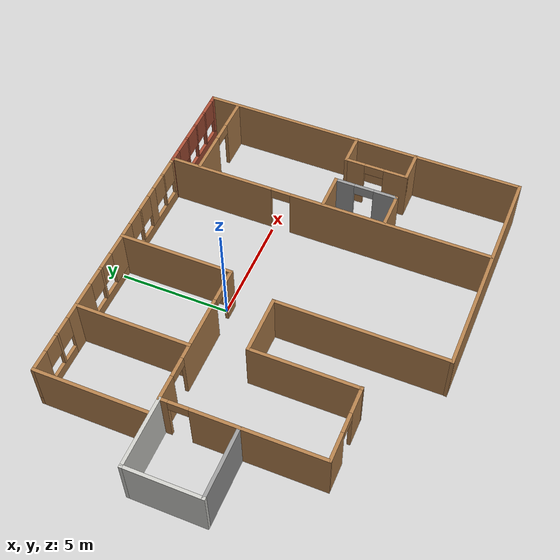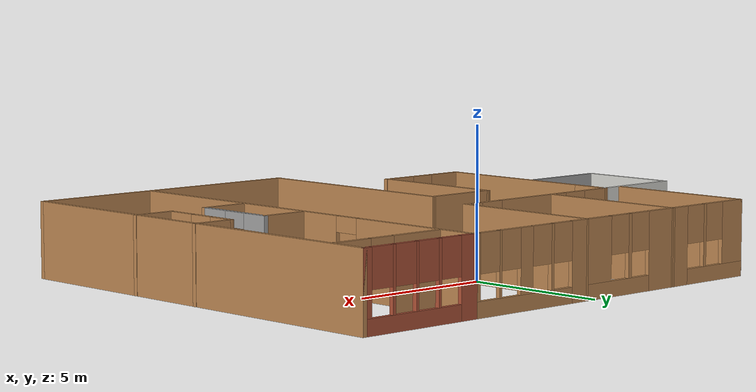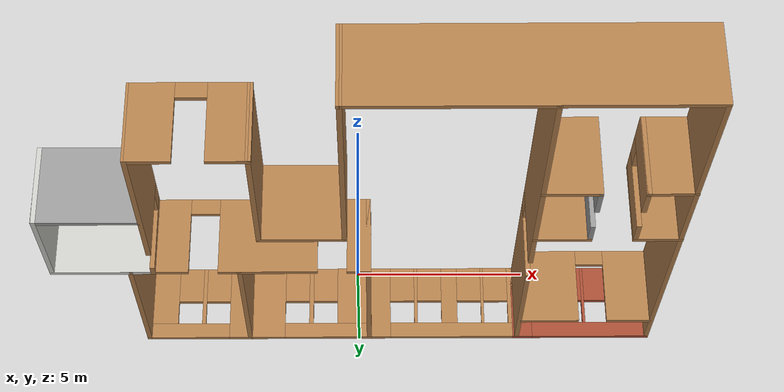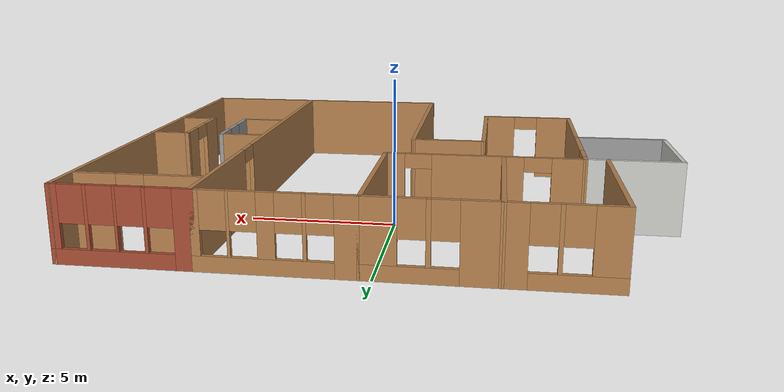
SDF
<?xml version='1.0'?>
<sdf version='1.6'>
  <model name='Building'>
    <pose frame=''>0.090066 -2.53341 0 0 -0 0</pose>
    <link name='Wall_10'>
      <collision name='Wall_10_Collision'>
        <geometry>
          <box>
            <size>4.92224 0.15 2.5</size>
          </box>
        </geometry>
        <pose frame=''>0 0 1.25 0 -0 0</pose>
      </collision>
      <visual name='Wall_10_Visual'>
        <pose frame=''>0 0 1.25 0 -0 0</pose>
        <geometry>
          <box>
            <size>4.92224 0.15 2.5</size>
          </box>
        </geometry>
        <material>
          <script>
            <uri>file://media/materials/scripts/gazebo.material</uri>
            <name>Gazebo/Wood</name>
          </script>
          <ambient>1 1 1 1</ambient>
        </material>
        <meta>
          <layer>0</layer>
        </meta>
      </visual>
      <pose frame=''>-2.9894 -2.23398 0 0 -0 1.57138</pose>
    </link>
    <link name='Wall_11'>
      <collision name='Wall_11_Collision'>
        <geometry>
          <box>
            <size>2.65308 0.15 2.5</size>
          </box>
        </geometry>
        <pose frame=''>0 0 1.25 0 -0 0</pose>
      </collision>
      <visual name='Wall_11_Visual'>
        <pose frame=''>0 0 1.25 0 -0 0</pose>
        <geometry>
          <box>
            <size>2.65308 0.15 2.5</size>
          </box>
        </geometry>
        <material>
          <script>
            <uri>file://media/materials/scripts/gazebo.material</uri>
            <name>Gazebo/Wood</name>
          </script>
          <ambient>1 1 1 1</ambient>
        </material>
        <meta>
          <layer>0</layer>
        </meta>
      </visual>
      <pose frame=''>-1.72405 0.152131 0 0 -0 0</pose>
    </link>
    <link name='Wall_12'>
      <collision name='Wall_12_Collision'>
        <geometry>
          <box>
            <size>7.78322 0.15 2.5</size>
          </box>
        </geometry>
        <pose frame=''>0 0 1.25 0 -0 0</pose>
      </collision>
      <visual name='Wall_12_Visual'>
        <pose frame=''>0 0 1.25 0 -0 0</pose>
        <geometry>
          <box>
            <size>7.78322 0.15 2.5</size>
          </box>
        </geometry>
        <material>
          <script>
            <uri>file://media/materials/scripts/gazebo.material</uri>
            <name>Gazebo/Wood</name>
          </script>
          <ambient>1 1 1 1</ambient>
        </material>
        <meta>
          <layer>0</layer>
        </meta>
      </visual>
      <pose frame=''>-0.4649 -3.66447 0 0 0 -1.57279</pose>
    </link>
    <link name='Wall_14'>
      <pose frame=''>5.14628 -0.015615 0 0 -0 1.5708</pose>
      <visual name='Wall_14_Visual_0'>
        <pose frame=''>-2.87766 0 1.25 0 -0 0</pose>
        <geometry>
          <box>
            <size>9.24468 0.15 2.5</size>
          </box>
        </geometry>
        <material>
          <script>
            <uri>file://media/materials/scripts/gazebo.material</uri>
            <name>Gazebo/Wood</name>
          </script>
          <ambient>1 1 1 1</ambient>
        </material>
        <meta>
          <layer>0</layer>
        </meta>
      </visual>
      <collision name='Wall_14_Collision_0'>
        <geometry>
          <box>
            <size>9.24468 0.15 2.5</size>
          </box>
        </geometry>
        <pose frame=''>-2.87766 0 1.25 0 -0 0</pose>
      </collision>
      <visual name='Wall_14_Visual_1'>
        <pose frame=''>5.07234 0 1.25 0 -0 0</pose>
        <geometry>
          <box>
            <size>4.85532 0.15 2.5</size>
          </box>
        </geometry>
        <material>
          <script>
            <uri>file://media/materials/scripts/gazebo.material</uri>
            <name>Gazebo/Wood</name>
          </script>
          <ambient>1 1 1 1</ambient>
        </material>
        <meta>
          <layer>0</layer>
        </meta>
      </visual>
      <collision name='Wall_14_Collision_1'>
        <geometry>
          <box>
            <size>4.85532 0.15 2.5</size>
          </box>
        </geometry>
        <pose frame=''>5.07234 0 1.25 0 -0 0</pose>
      </collision>
      <visual name='Wall_14_Visual_2'>
        <pose frame=''>2.19468 0 2.25 0 -0 0</pose>
        <geometry>
          <box>
            <size>0.9 0.15 0.5</size>
          </box>
        </geometry>
        <material>
          <script>
            <uri>file://media/materials/scripts/gazebo.material</uri>
            <name>Gazebo/Wood</name>
          </script>
          <ambient>1 1 1 1</ambient>
        </material>
        <meta>
          <layer>0</layer>
        </meta>
      </visual>
      <collision name='Wall_14_Collision_2'>
        <geometry>
          <box>
            <size>0.9 0.15 0.5</size>
          </box>
        </geometry>
        <pose frame=''>2.19468 0 2.25 0 -0 0</pose>
      </collision>
    </link>
    <link name='Wall_17'>
      <pose frame=''>-6.34701 -1.12558 0 0 -0 1.57337</pose>
      <visual name='Wall_17_Visual_0'>
        <pose frame=''>-0.66617 0 1.25 0 -0 0</pose>
        <geometry>
          <box>
            <size>5.80671 0.15 2.5</size>
          </box>
        </geometry>
        <material>
          <script>
            <uri>file://media/materials/scripts/gazebo.material</uri>
            <name>Gazebo/Wood</name>
          </script>
          <ambient>1 1 1 1</ambient>
        </material>
        <meta>
          <layer>0</layer>
        </meta>
      </visual>
      <collision name='Wall_17_Collision_0'>
        <geometry>
          <box>
            <size>5.80671 0.15 2.5</size>
          </box>
        </geometry>
        <pose frame=''>-0.66617 0 1.25 0 -0 0</pose>
      </collision>
      <visual name='Wall_17_Visual_1'>
        <pose frame=''>3.35335 0 1.25 0 -0 0</pose>
        <geometry>
          <box>
            <size>0.43234 0.15 2.5</size>
          </box>
        </geometry>
        <material>
          <script>
            <uri>file://media/materials/scripts/gazebo.material</uri>
            <name>Gazebo/Wood</name>
          </script>
          <ambient>1 1 1 1</ambient>
        </material>
        <meta>
          <layer>0</layer>
        </meta>
      </visual>
      <collision name='Wall_17_Collision_1'>
        <geometry>
          <box>
            <size>0.43234 0.15 2.5</size>
          </box>
        </geometry>
        <pose frame=''>3.35335 0 1.25 0 -0 0</pose>
      </collision>
      <visual name='Wall_17_Visual_2'>
        <pose frame=''>2.68718 0 2.25 0 -0 0</pose>
        <geometry>
          <box>
            <size>0.9 0.15 0.5</size>
          </box>
        </geometry>
        <material>
          <script>
            <uri>file://media/materials/scripts/gazebo.material</uri>
            <name>Gazebo/Wood</name>
          </script>
          <ambient>1 1 1 1</ambient>
        </material>
        <meta>
          <layer>0</layer>
        </meta>
      </visual>
      <collision name='Wall_17_Collision_2'>
        <geometry>
          <box>
            <size>0.9 0.15 0.5</size>
          </box>
        </geometry>
        <pose frame=''>2.68718 0 2.25 0 -0 0</pose>
      </collision>
    </link>
    <link name='Wall_18'>
      <pose frame=''>-3.056 2.36893 0 0 -0 0</pose>
      <visual name='Wall_18_Visual_0'>
        <pose frame=''>-2.79787 0 1.25 0 -0 0</pose>
        <geometry>
          <box>
            <size>1.15426 0.15 2.5</size>
          </box>
        </geometry>
        <material>
          <script>
            <uri>file://media/materials/scripts/gazebo.material</uri>
            <name>Gazebo/Wood</name>
          </script>
          <ambient>1 1 1 1</ambient>
        </material>
        <meta>
          <layer>0</layer>
        </meta>
      </visual>
      <collision name='Wall_18_Collision_0'>
        <geometry>
          <box>
            <size>1.15426 0.15 2.5</size>
          </box>
        </geometry>
        <pose frame=''>-2.79787 0 1.25 0 -0 0</pose>
      </collision>
      <visual name='Wall_18_Visual_1'>
        <pose frame=''>0.206367 0 1.25 0 -0 0</pose>
        <geometry>
          <box>
            <size>3.05423 0.15 2.5</size>
          </box>
        </geometry>
        <material>
          <script>
            <uri>file://media/materials/scripts/gazebo.material</uri>
            <name>Gazebo/Wood</name>
          </script>
          <ambient>1 1 1 1</ambient>
        </material>
        <meta>
          <layer>0</layer>
        </meta>
      </visual>
      <collision name='Wall_18_Collision_1'>
        <geometry>
          <box>
            <size>3.05423 0.15 2.5</size>
          </box>
        </geometry>
        <pose frame=''>0.206367 0 1.25 0 -0 0</pose>
      </collision>
      <visual name='Wall_18_Visual_2'>
        <pose frame=''>3.00424 0 1.25 0 -0 0</pose>
        <geometry>
          <box>
            <size>0.741521 0.15 2.5</size>
          </box>
        </geometry>
        <material>
          <script>
            <uri>file://media/materials/scripts/gazebo.material</uri>
            <name>Gazebo/Wood</name>
          </script>
          <ambient>1 1 1 1</ambient>
        </material>
        <meta>
          <layer>0</layer>
        </meta>
      </visual>
      <collision name='Wall_18_Collision_2'>
        <geometry>
          <box>
            <size>0.741521 0.15 2.5</size>
          </box>
        </geometry>
        <pose frame=''>3.00424 0 1.25 0 -0 0</pose>
      </collision>
      <visual name='Wall_18_Visual_3'>
        <pose frame=''>-1.77075 0 2.25 0 -0 0</pose>
        <geometry>
          <box>
            <size>0.9 0.15 0.5</size>
          </box>
        </geometry>
        <material>
          <script>
            <uri>file://media/materials/scripts/gazebo.material</uri>
            <name>Gazebo/Wood</name>
          </script>
          <ambient>1 1 1 1</ambient>
        </material>
        <meta>
          <layer>0</layer>
        </meta>
      </visual>
      <collision name='Wall_18_Collision_3'>
        <geometry>
          <box>
            <size>0.9 0.15 0.5</size>
          </box>
        </geometry>
        <pose frame=''>-1.77075 0 2.25 0 -0 0</pose>
      </collision>
      <visual name='Wall_18_Visual_4'>
        <pose frame=''>2.18348 0 2.25 0 -0 0</pose>
        <geometry>
          <box>
            <size>0.9 0.15 0.5</size>
          </box>
        </geometry>
        <material>
          <script>
            <uri>file://media/materials/scripts/gazebo.material</uri>
            <name>Gazebo/Wood</name>
          </script>
          <ambient>1 1 1 1</ambient>
        </material>
        <meta>
          <layer>0</layer>
        </meta>
      </visual>
      <collision name='Wall_18_Collision_4'>
        <geometry>
          <box>
            <size>0.9 0.15 0.5</size>
          </box>
        </geometry>
        <pose frame=''>2.18348 0 2.25 0 -0 0</pose>
      </collision>
    </link>
    <link name='Wall_19'>
      <collision name='Wall_19_Collision'>
        <geometry>
          <box>
            <size>5.25 0.15 2.5</size>
          </box>
        </geometry>
        <pose frame=''>0 0 1.25 0 -0 0</pose>
      </collision>
      <visual name='Wall_19_Visual'>
        <pose frame=''>0 0 1.25 0 -0 0</pose>
        <geometry>
          <box>
            <size>5.25 0.15 2.5</size>
          </box>
        </geometry>
        <material>
          <script>
            <uri>file://media/materials/scripts/gazebo.material</uri>
            <name>Gazebo/Wood</name>
          </script>
          <ambient>1 1 1 1</ambient>
        </material>
        <meta>
          <layer>0</layer>
        </meta>
      </visual>
      <pose frame=''>0.243997 4.91893 0 0 -0 1.5708</pose>
    </link>
    <link name='Wall_20'>
      <pose frame=''>2.669 7.46893 0 0 -0 0</pose>
      <visual name='Wall_20_Visual_0'>
        <pose frame=''>-2.10556 0 1.25 0 -0 0</pose>
        <geometry>
          <box>
            <size>0.788872 0.15 2.5</size>
          </box>
        </geometry>
        <material>
          <script>
            <uri>file://media/materials/scripts/gazebo.material</uri>
            <name>Gazebo/Wood</name>
          </script>
          <ambient>1 1 1 1</ambient>
        </material>
        <meta>
          <layer>0</layer>
        </meta>
      </visual>
      <collision name='Wall_20_Collision_0'>
        <geometry>
          <box>
            <size>0.788872 0.15 2.5</size>
          </box>
        </geometry>
        <pose frame=''>-2.10556 0 1.25 0 -0 0</pose>
      </collision>
      <visual name='Wall_20_Visual_1'>
        <pose frame=''>0.394436 0 0.25 0 -0 0</pose>
        <geometry>
          <box>
            <size>4.21113 0.15 0.5</size>
          </box>
        </geometry>
        <material>
          <script>
            <uri>file://media/materials/scripts/gazebo.material</uri>
            <name>Gazebo/Wood</name>
          </script>
          <ambient>1 1 1 1</ambient>
        </material>
        <meta>
          <layer>0</layer>
        </meta>
      </visual>
      <collision name='Wall_20_Collision_1'>
        <geometry>
          <box>
            <size>4.21113 0.15 0.5</size>
          </box>
        </geometry>
        <pose frame=''>0.394436 0 0.25 0 -0 0</pose>
      </collision>
      <visual name='Wall_20_Visual_2'>
        <pose frame=''>-0.856386 0 1.5 0 -0 0</pose>
        <geometry>
          <box>
            <size>0.109483 0.15 2</size>
          </box>
        </geometry>
        <material>
          <script>
            <uri>file://media/materials/scripts/gazebo.material</uri>
            <name>Gazebo/Wood</name>
          </script>
          <ambient>1 1 1 1</ambient>
        </material>
        <meta>
          <layer>0</layer>
        </meta>
      </visual>
      <collision name='Wall_20_Collision_2'>
        <geometry>
          <box>
            <size>0.109483 0.15 2</size>
          </box>
        </geometry>
        <pose frame=''>-0.856386 0 1.5 0 -0 0</pose>
      </collision>
      <visual name='Wall_20_Visual_3'>
        <pose frame=''>0.262978 0 1.5 0 -0 0</pose>
        <geometry>
          <box>
            <size>0.529245 0.15 2</size>
          </box>
        </geometry>
        <material>
          <script>
            <uri>file://media/materials/scripts/gazebo.material</uri>
            <name>Gazebo/Wood</name>
          </script>
          <ambient>1 1 1 1</ambient>
        </material>
        <meta>
          <layer>0</layer>
        </meta>
      </visual>
      <collision name='Wall_20_Collision_3'>
        <geometry>
          <box>
            <size>0.529245 0.15 2</size>
          </box>
        </geometry>
        <pose frame=''>0.262978 0 1.5 0 -0 0</pose>
      </collision>
      <visual name='Wall_20_Visual_4'>
        <pose frame=''>1.3736 0 1.5 0 -0 0</pose>
        <geometry>
          <box>
            <size>0.091993 0.15 2</size>
          </box>
        </geometry>
        <material>
          <script>
            <uri>file://media/materials/scripts/gazebo.material</uri>
            <name>Gazebo/Wood</name>
          </script>
          <ambient>1 1 1 1</ambient>
        </material>
        <meta>
          <layer>0</layer>
        </meta>
      </visual>
      <collision name='Wall_20_Collision_4'>
        <geometry>
          <box>
            <size>0.091993 0.15 2</size>
          </box>
        </geometry>
        <pose frame=''>1.3736 0 1.5 0 -0 0</pose>
      </collision>
      <visual name='Wall_20_Visual_5'>
        <pose frame=''>2.3598 0 1.5 0 -0 0</pose>
        <geometry>
          <box>
            <size>0.280407 0.15 2</size>
          </box>
        </geometry>
        <material>
          <script>
            <uri>file://media/materials/scripts/gazebo.material</uri>
            <name>Gazebo/Wood</name>
          </script>
          <ambient>1 1 1 1</ambient>
        </material>
        <meta>
          <layer>0</layer>
        </meta>
      </visual>
      <collision name='Wall_20_Collision_5'>
        <geometry>
          <box>
            <size>0.280407 0.15 2</size>
          </box>
        </geometry>
        <pose frame=''>2.3598 0 1.5 0 -0 0</pose>
      </collision>
      <visual name='Wall_20_Visual_6'>
        <pose frame=''>-1.31113 0 1.9 0 -0 0</pose>
        <geometry>
          <box>
            <size>0.8 0.15 1.2</size>
          </box>
        </geometry>
        <material>
          <script>
            <uri>file://media/materials/scripts/gazebo.material</uri>
            <name>Gazebo/Wood</name>
          </script>
          <ambient>1 1 1 1</ambient>
        </material>
        <meta>
          <layer>0</layer>
        </meta>
      </visual>
      <collision name='Wall_20_Collision_6'>
        <geometry>
          <box>
            <size>0.8 0.15 1.2</size>
          </box>
        </geometry>
        <pose frame=''>-1.31113 0 1.9 0 -0 0</pose>
      </collision>
      <visual name='Wall_20_Visual_7'>
        <pose frame=''>-0.401645 0 1.9 0 -0 0</pose>
        <geometry>
          <box>
            <size>0.8 0.15 1.2</size>
          </box>
        </geometry>
        <material>
          <script>
            <uri>file://media/materials/scripts/gazebo.material</uri>
            <name>Gazebo/Wood</name>
          </script>
          <ambient>1 1 1 1</ambient>
        </material>
        <meta>
          <layer>0</layer>
        </meta>
      </visual>
      <collision name='Wall_20_Collision_7'>
        <geometry>
          <box>
            <size>0.8 0.15 1.2</size>
          </box>
        </geometry>
        <pose frame=''>-0.401645 0 1.9 0 -0 0</pose>
      </collision>
      <visual name='Wall_20_Visual_8'>
        <pose frame=''>0.9276 0 1.9 0 -0 0</pose>
        <geometry>
          <box>
            <size>0.8 0.15 1.2</size>
          </box>
        </geometry>
        <material>
          <script>
            <uri>file://media/materials/scripts/gazebo.material</uri>
            <name>Gazebo/Wood</name>
          </script>
          <ambient>1 1 1 1</ambient>
        </material>
        <meta>
          <layer>0</layer>
        </meta>
      </visual>
      <collision name='Wall_20_Collision_8'>
        <geometry>
          <box>
            <size>0.8 0.15 1.2</size>
          </box>
        </geometry>
        <pose frame=''>0.9276 0 1.9 0 -0 0</pose>
      </collision>
      <visual name='Wall_20_Visual_9'>
        <pose frame=''>1.81959 0 1.9 0 -0 0</pose>
        <geometry>
          <box>
            <size>0.8 0.15 1.2</size>
          </box>
        </geometry>
        <material>
          <script>
            <uri>file://media/materials/scripts/gazebo.material</uri>
            <name>Gazebo/Wood</name>
          </script>
          <ambient>1 1 1 1</ambient>
        </material>
        <meta>
          <layer>0</layer>
        </meta>
      </visual>
      <collision name='Wall_20_Collision_9'>
        <geometry>
          <box>
            <size>0.8 0.15 1.2</size>
          </box>
        </geometry>
        <pose frame=''>1.81959 0 1.9 0 -0 0</pose>
      </collision>
    </link>
    <link name='Wall_22'>
      <collision name='Wall_22_Collision'>
        <geometry>
          <box>
            <size>3.25 0.15 2.5</size>
          </box>
        </geometry>
        <pose frame=''>0 0 1.25 0 -0 0</pose>
      </collision>
      <visual name='Wall_22_Visual'>
        <pose frame=''>0 0 1.25 0 -0 0</pose>
        <geometry>
          <box>
            <size>3.25 0.15 2.5</size>
          </box>
        </geometry>
        <material>
          <script>
            <uri>file://media/materials/scripts/gazebo.material</uri>
            <name>Gazebo/CeilingTiled</name>
          </script>
          <ambient>1 1 1 1</ambient>
        </material>
        <meta>
          <layer>0</layer>
        </meta>
      </visual>
      <pose frame=''>-7.906 2.36893 0 0 -0 3.14159</pose>
    </link>
    <link name='Wall_23'>
      <collision name='Wall_23_Collision'>
        <geometry>
          <box>
            <size>3.5 0.15 2.5</size>
          </box>
        </geometry>
        <pose frame=''>0 0 1.25 0 -0 0</pose>
      </collision>
      <visual name='Wall_23_Visual'>
        <pose frame=''>0 0 1.25 0 -0 0</pose>
        <geometry>
          <box>
            <size>3.5 0.15 2.5</size>
          </box>
        </geometry>
        <material>
          <script>
            <uri>file://media/materials/scripts/gazebo.material</uri>
            <name>Gazebo/CeilingTiled</name>
          </script>
          <ambient>1 1 1 1</ambient>
        </material>
        <meta>
          <layer>0</layer>
        </meta>
      </visual>
      <pose frame=''>-9.456 0.69393 0 0 0 -1.5708</pose>
    </link>
    <link name='Wall_24'>
      <collision name='Wall_24_Collision'>
        <geometry>
          <box>
            <size>3.25 0.15 2.5</size>
          </box>
        </geometry>
        <pose frame=''>0 0 1.25 0 -0 0</pose>
      </collision>
      <visual name='Wall_24_Visual'>
        <pose frame=''>0 0 1.25 0 -0 0</pose>
        <geometry>
          <box>
            <size>3.25 0.15 2.5</size>
          </box>
        </geometry>
        <material>
          <script>
            <uri>file://media/materials/scripts/gazebo.material</uri>
            <name>Gazebo/Grey</name>
          </script>
          <ambient>1 1 1 1</ambient>
        </material>
        <meta>
          <layer>0</layer>
        </meta>
      </visual>
      <pose frame=''>-7.906 -0.98107 0 0 -0 0</pose>
    </link>
    <link name='Wall_26'>
      <collision name='Wall_26_Collision'>
        <geometry>
          <box>
            <size>5.25 0.15 2.5</size>
          </box>
        </geometry>
        <pose frame=''>0 0 1.25 0 -0 0</pose>
      </collision>
      <visual name='Wall_26_Visual'>
        <pose frame=''>0 0 1.25 0 -0 0</pose>
        <geometry>
          <box>
            <size>5.25 0.15 2.5</size>
          </box>
        </geometry>
        <material>
          <script>
            <uri>file://media/materials/scripts/gazebo.material</uri>
            <name>Gazebo/Wood</name>
          </script>
          <ambient>1 1 1 1</ambient>
        </material>
        <meta>
          <layer>0</layer>
        </meta>
      </visual>
      <pose frame=''>-3.71413 4.93099 0 0 -0 1.5708</pose>
    </link>
    <link name='Wall_27'>
      <pose frame=''>-1.73507 7.47496 0 0 0 -0.003047</pose>
      <visual name='Wall_27_Visual_0'>
        <pose frame=''>-1.43843 0 1.25 0 -0 0</pose>
        <geometry>
          <box>
            <size>1.23129 0.15 2.5</size>
          </box>
        </geometry>
        <material>
          <script>
            <uri>file://media/materials/scripts/gazebo.material</uri>
            <name>Gazebo/Wood</name>
          </script>
          <ambient>1 1 1 1</ambient>
        </material>
        <meta>
          <layer>0</layer>
        </meta>
      </visual>
      <collision name='Wall_27_Collision_0'>
        <geometry>
          <box>
            <size>1.23129 0.15 2.5</size>
          </box>
        </geometry>
        <pose frame=''>-1.43843 0 1.25 0 -0 0</pose>
      </collision>
      <visual name='Wall_27_Visual_1'>
        <pose frame=''>0.615644 0 0.25 0 -0 0</pose>
        <geometry>
          <box>
            <size>2.87686 0.15 0.5</size>
          </box>
        </geometry>
        <material>
          <script>
            <uri>file://media/materials/scripts/gazebo.material</uri>
            <name>Gazebo/Wood</name>
          </script>
          <ambient>1 1 1 1</ambient>
        </material>
        <meta>
          <layer>0</layer>
        </meta>
      </visual>
      <collision name='Wall_27_Collision_1'>
        <geometry>
          <box>
            <size>2.87686 0.15 0.5</size>
          </box>
        </geometry>
        <pose frame=''>0.615644 0 0.25 0 -0 0</pose>
      </collision>
      <visual name='Wall_27_Visual_2'>
        <pose frame=''>0.049524 0 1.5 0 -0 0</pose>
        <geometry>
          <box>
            <size>0.144619 0.15 2</size>
          </box>
        </geometry>
        <material>
          <script>
            <uri>file://media/materials/scripts/gazebo.material</uri>
            <name>Gazebo/Wood</name>
          </script>
          <ambient>1 1 1 1</ambient>
        </material>
        <meta>
          <layer>0</layer>
        </meta>
      </visual>
      <collision name='Wall_27_Collision_2'>
        <geometry>
          <box>
            <size>0.144619 0.15 2</size>
          </box>
        </geometry>
        <pose frame=''>0.049524 0 1.5 0 -0 0</pose>
      </collision>
      <visual name='Wall_27_Visual_3'>
        <pose frame=''>1.48795 0 1.5 0 -0 0</pose>
        <geometry>
          <box>
            <size>1.13224 0.15 2</size>
          </box>
        </geometry>
        <material>
          <script>
            <uri>file://media/materials/scripts/gazebo.material</uri>
            <name>Gazebo/Wood</name>
          </script>
          <ambient>1 1 1 1</ambient>
        </material>
        <meta>
          <layer>0</layer>
        </meta>
      </visual>
      <collision name='Wall_27_Collision_3'>
        <geometry>
          <box>
            <size>1.13224 0.15 2</size>
          </box>
        </geometry>
        <pose frame=''>1.48795 0 1.5 0 -0 0</pose>
      </collision>
      <visual name='Wall_27_Visual_4'>
        <pose frame=''>-0.422785 0 1.9 0 -0 0</pose>
        <geometry>
          <box>
            <size>0.8 0.15 1.2</size>
          </box>
        </geometry>
        <material>
          <script>
            <uri>file://media/materials/scripts/gazebo.material</uri>
            <name>Gazebo/Wood</name>
          </script>
          <ambient>1 1 1 1</ambient>
        </material>
        <meta>
          <layer>0</layer>
        </meta>
      </visual>
      <collision name='Wall_27_Collision_4'>
        <geometry>
          <box>
            <size>0.8 0.15 1.2</size>
          </box>
        </geometry>
        <pose frame=''>-0.422785 0 1.9 0 -0 0</pose>
      </collision>
      <visual name='Wall_27_Visual_5'>
        <pose frame=''>0.521834 0 1.9 0 -0 0</pose>
        <geometry>
          <box>
            <size>0.8 0.15 1.2</size>
          </box>
        </geometry>
        <material>
          <script>
            <uri>file://media/materials/scripts/gazebo.material</uri>
            <name>Gazebo/Wood</name>
          </script>
          <ambient>1 1 1 1</ambient>
        </material>
        <meta>
          <layer>0</layer>
        </meta>
      </visual>
      <collision name='Wall_27_Collision_5'>
        <geometry>
          <box>
            <size>0.8 0.15 1.2</size>
          </box>
        </geometry>
        <pose frame=''>0.521834 0 1.9 0 -0 0</pose>
      </collision>
    </link>
    <link name='Wall_29'>
      <pose frame=''>-5.38913 7.48099 0 0 -0 3.14159</pose>
      <visual name='Wall_29_Visual_0'>
        <pose frame=''>-1.3615 0 1.25 0 -0 0</pose>
        <geometry>
          <box>
            <size>0.776991 0.15 2.5</size>
          </box>
        </geometry>
        <material>
          <script>
            <uri>file://media/materials/scripts/gazebo.material</uri>
            <name>Gazebo/Wood</name>
          </script>
          <ambient>1 1 1 1</ambient>
        </material>
        <meta>
          <layer>0</layer>
        </meta>
      </visual>
      <collision name='Wall_29_Collision_0'>
        <geometry>
          <box>
            <size>0.776991 0.15 2.5</size>
          </box>
        </geometry>
        <pose frame=''>-1.3615 0 1.25 0 -0 0</pose>
      </collision>
      <visual name='Wall_29_Visual_1'>
        <pose frame=''>0.388496 0 0.25 0 -0 0</pose>
        <geometry>
          <box>
            <size>2.72301 0.15 0.5</size>
          </box>
        </geometry>
        <material>
          <script>
            <uri>file://media/materials/scripts/gazebo.material</uri>
            <name>Gazebo/Wood</name>
          </script>
          <ambient>1 1 1 1</ambient>
        </material>
        <meta>
          <layer>0</layer>
        </meta>
      </visual>
      <collision name='Wall_29_Collision_1'>
        <geometry>
          <box>
            <size>2.72301 0.15 0.5</size>
          </box>
        </geometry>
        <pose frame=''>0.388496 0 0.25 0 -0 0</pose>
      </collision>
      <visual name='Wall_29_Visual_2'>
        <pose frame=''>-0.109522 0 1.5 0 -0 0</pose>
        <geometry>
          <box>
            <size>0.126973 0.15 2</size>
          </box>
        </geometry>
        <material>
          <script>
            <uri>file://media/materials/scripts/gazebo.material</uri>
            <name>Gazebo/Wood</name>
          </script>
          <ambient>1 1 1 1</ambient>
        </material>
        <meta>
          <layer>0</layer>
        </meta>
      </visual>
      <collision name='Wall_29_Collision_2'>
        <geometry>
          <box>
            <size>0.126973 0.15 2</size>
          </box>
        </geometry>
        <pose frame=''>-0.109522 0 1.5 0 -0 0</pose>
      </collision>
      <visual name='Wall_29_Visual_3'>
        <pose frame=''>1.25198 0 1.5 0 -0 0</pose>
        <geometry>
          <box>
            <size>0.996035 0.15 2</size>
          </box>
        </geometry>
        <material>
          <script>
            <uri>file://media/materials/scripts/gazebo.material</uri>
            <name>Gazebo/Wood</name>
          </script>
          <ambient>1 1 1 1</ambient>
        </material>
        <meta>
          <layer>0</layer>
        </meta>
      </visual>
      <collision name='Wall_29_Collision_3'>
        <geometry>
          <box>
            <size>0.996035 0.15 2</size>
          </box>
        </geometry>
        <pose frame=''>1.25198 0 1.5 0 -0 0</pose>
      </collision>
      <visual name='Wall_29_Visual_4'>
        <pose frame=''>-0.573009 0 1.9 0 -0 0</pose>
        <geometry>
          <box>
            <size>0.8 0.15 1.2</size>
          </box>
        </geometry>
        <material>
          <script>
            <uri>file://media/materials/scripts/gazebo.material</uri>
            <name>Gazebo/Wood</name>
          </script>
          <ambient>1 1 1 1</ambient>
        </material>
        <meta>
          <layer>0</layer>
        </meta>
      </visual>
      <collision name='Wall_29_Collision_4'>
        <geometry>
          <box>
            <size>0.8 0.15 1.2</size>
          </box>
        </geometry>
        <pose frame=''>-0.573009 0 1.9 0 -0 0</pose>
      </collision>
      <visual name='Wall_29_Visual_5'>
        <pose frame=''>0.353965 0 1.9 0 -0 0</pose>
        <geometry>
          <box>
            <size>0.8 0.15 1.2</size>
          </box>
        </geometry>
        <material>
          <script>
            <uri>file://media/materials/scripts/gazebo.material</uri>
            <name>Gazebo/Wood</name>
          </script>
          <ambient>1 1 1 1</ambient>
        </material>
        <meta>
          <layer>0</layer>
        </meta>
      </visual>
      <collision name='Wall_29_Collision_5'>
        <geometry>
          <box>
            <size>0.8 0.15 1.2</size>
          </box>
        </geometry>
        <pose frame=''>0.353965 0 1.9 0 -0 0</pose>
      </collision>
    </link>
    <link name='Wall_30'>
      <collision name='Wall_30_Collision'>
        <geometry>
          <box>
            <size>5.25 0.15 2.5</size>
          </box>
        </geometry>
        <pose frame=''>0 0 1.25 0 -0 0</pose>
      </collision>
      <visual name='Wall_30_Visual'>
        <pose frame=''>0 0 1.25 0 -0 0</pose>
        <geometry>
          <box>
            <size>5.25 0.15 2.5</size>
          </box>
        </geometry>
        <material>
          <script>
            <uri>file://media/materials/scripts/gazebo.material</uri>
            <name>Gazebo/Wood</name>
          </script>
          <ambient>1 1 1 1</ambient>
        </material>
        <meta>
          <layer>0</layer>
        </meta>
      </visual>
      <pose frame=''>-7.06413 4.93099 0 0 0 -1.5708</pose>
    </link>
    <link name='Wall_32'>
      <pose frame=''>7.269 7.46893 0 0 -0 0</pose>
      <visual name='Wall_32_Visual_0'>
        <pose frame=''>-1.92815 0 1.25 0 -0 0</pose>
        <geometry>
          <box>
            <size>0.643699 0.15 2.5</size>
          </box>
        </geometry>
        <material>
          <script>
            <uri>file://media/materials/scripts/gazebo.material</uri>
            <name>Gazebo/Bricks</name>
          </script>
          <ambient>1 1 1 1</ambient>
        </material>
        <meta>
          <layer>0</layer>
        </meta>
      </visual>
      <collision name='Wall_32_Collision_0'>
        <geometry>
          <box>
            <size>0.643699 0.15 2.5</size>
          </box>
        </geometry>
        <pose frame=''>-1.92815 0 1.25 0 -0 0</pose>
      </collision>
      <visual name='Wall_32_Visual_1'>
        <pose frame=''>0.321849 0 0.25 0 -0 0</pose>
        <geometry>
          <box>
            <size>3.8563 0.15 0.5</size>
          </box>
        </geometry>
        <material>
          <script>
            <uri>file://media/materials/scripts/gazebo.material</uri>
            <name>Gazebo/Bricks</name>
          </script>
          <ambient>1 1 1 1</ambient>
        </material>
        <meta>
          <layer>0</layer>
        </meta>
      </visual>
      <collision name='Wall_32_Collision_1'>
        <geometry>
          <box>
            <size>3.8563 0.15 0.5</size>
          </box>
        </geometry>
        <pose frame=''>0.321849 0 0.25 0 -0 0</pose>
      </collision>
      <visual name='Wall_32_Visual_2'>
        <pose frame=''>-0.751559 0 1.5 0 -0 0</pose>
        <geometry>
          <box>
            <size>0.109483 0.15 2</size>
          </box>
        </geometry>
        <material>
          <script>
            <uri>file://media/materials/scripts/gazebo.material</uri>
            <name>Gazebo/Bricks</name>
          </script>
          <ambient>1 1 1 1</ambient>
        </material>
        <meta>
          <layer>0</layer>
        </meta>
      </visual>
      <collision name='Wall_32_Collision_2'>
        <geometry>
          <box>
            <size>0.109483 0.15 2</size>
          </box>
        </geometry>
        <pose frame=''>-0.751559 0 1.5 0 -0 0</pose>
      </collision>
      <visual name='Wall_32_Visual_3'>
        <pose frame=''>0.149179 0 1.5 0 -0 0</pose>
        <geometry>
          <box>
            <size>0.091993 0.15 2</size>
          </box>
        </geometry>
        <material>
          <script>
            <uri>file://media/materials/scripts/gazebo.material</uri>
            <name>Gazebo/Bricks</name>
          </script>
          <ambient>1 1 1 1</ambient>
        </material>
        <meta>
          <layer>0</layer>
        </meta>
      </visual>
      <collision name='Wall_32_Collision_3'>
        <geometry>
          <box>
            <size>0.091993 0.15 2</size>
          </box>
        </geometry>
        <pose frame=''>0.149179 0 1.5 0 -0 0</pose>
      </collision>
      <visual name='Wall_32_Visual_4'>
        <pose frame=''>1.04992 0 1.5 0 -0 0</pose>
        <geometry>
          <box>
            <size>0.109483 0.15 2</size>
          </box>
        </geometry>
        <material>
          <script>
            <uri>file://media/materials/scripts/gazebo.material</uri>
            <name>Gazebo/Bricks</name>
          </script>
          <ambient>1 1 1 1</ambient>
        </material>
        <meta>
          <layer>0</layer>
        </meta>
      </visual>
      <collision name='Wall_32_Collision_4'>
        <geometry>
          <box>
            <size>0.109483 0.15 2</size>
          </box>
        </geometry>
        <pose frame=''>1.04992 0 1.5 0 -0 0</pose>
      </collision>
      <visual name='Wall_32_Visual_5'>
        <pose frame=''>2.07733 0 1.5 0 -0 0</pose>
        <geometry>
          <box>
            <size>0.345342 0.15 2</size>
          </box>
        </geometry>
        <material>
          <script>
            <uri>file://media/materials/scripts/gazebo.material</uri>
            <name>Gazebo/Bricks</name>
          </script>
          <ambient>1 1 1 1</ambient>
        </material>
        <meta>
          <layer>0</layer>
        </meta>
      </visual>
      <collision name='Wall_32_Collision_5'>
        <geometry>
          <box>
            <size>0.345342 0.15 2</size>
          </box>
        </geometry>
        <pose frame=''>2.07733 0 1.5 0 -0 0</pose>
      </collision>
      <visual name='Wall_32_Visual_6'>
        <pose frame=''>-1.2063 0 1.9 0 -0 0</pose>
        <geometry>
          <box>
            <size>0.8 0.15 1.2</size>
          </box>
        </geometry>
        <material>
          <script>
            <uri>file://media/materials/scripts/gazebo.material</uri>
            <name>Gazebo/Bricks</name>
          </script>
          <ambient>1 1 1 1</ambient>
        </material>
        <meta>
          <layer>0</layer>
        </meta>
      </visual>
      <collision name='Wall_32_Collision_6'>
        <geometry>
          <box>
            <size>0.8 0.15 1.2</size>
          </box>
        </geometry>
        <pose frame=''>-1.2063 0 1.9 0 -0 0</pose>
      </collision>
      <visual name='Wall_32_Visual_7'>
        <pose frame=''>-0.296818 0 1.9 0 -0 0</pose>
        <geometry>
          <box>
            <size>0.8 0.15 1.2</size>
          </box>
        </geometry>
        <material>
          <script>
            <uri>file://media/materials/scripts/gazebo.material</uri>
            <name>Gazebo/Bricks</name>
          </script>
          <ambient>1 1 1 1</ambient>
        </material>
        <meta>
          <layer>0</layer>
        </meta>
      </visual>
      <collision name='Wall_32_Collision_7'>
        <geometry>
          <box>
            <size>0.8 0.15 1.2</size>
          </box>
        </geometry>
        <pose frame=''>-0.296818 0 1.9 0 -0 0</pose>
      </collision>
      <visual name='Wall_32_Visual_8'>
        <pose frame=''>0.595175 0 1.9 0 -0 0</pose>
        <geometry>
          <box>
            <size>0.8 0.15 1.2</size>
          </box>
        </geometry>
        <material>
          <script>
            <uri>file://media/materials/scripts/gazebo.material</uri>
            <name>Gazebo/Bricks</name>
          </script>
          <ambient>1 1 1 1</ambient>
        </material>
        <meta>
          <layer>0</layer>
        </meta>
      </visual>
      <collision name='Wall_32_Collision_8'>
        <geometry>
          <box>
            <size>0.8 0.15 1.2</size>
          </box>
        </geometry>
        <pose frame=''>0.595175 0 1.9 0 -0 0</pose>
      </collision>
      <visual name='Wall_32_Visual_9'>
        <pose frame=''>1.50466 0 1.9 0 -0 0</pose>
        <geometry>
          <box>
            <size>0.8 0.15 1.2</size>
          </box>
        </geometry>
        <material>
          <script>
            <uri>file://media/materials/scripts/gazebo.material</uri>
            <name>Gazebo/Bricks</name>
          </script>
          <ambient>1 1 1 1</ambient>
        </material>
        <meta>
          <layer>0</layer>
        </meta>
      </visual>
      <collision name='Wall_32_Collision_9'>
        <geometry>
          <box>
            <size>0.8 0.15 1.2</size>
          </box>
        </geometry>
        <pose frame=''>1.50466 0 1.9 0 -0 0</pose>
      </collision>
    </link>
    <link name='Wall_33'>
      <collision name='Wall_33_Collision'>
        <geometry>
          <box>
            <size>15 0.15 2.5</size>
          </box>
        </geometry>
        <pose frame=''>0 0 1.25 0 -0 0</pose>
      </collision>
      <visual name='Wall_33_Visual'>
        <pose frame=''>0 0 1.25 0 -0 0</pose>
        <geometry>
          <box>
            <size>15 0.15 2.5</size>
          </box>
        </geometry>
        <material>
          <script>
            <uri>file://media/materials/scripts/gazebo.material</uri>
            <name>Gazebo/Wood</name>
          </script>
          <ambient>1 1 1 1</ambient>
        </material>
        <meta>
          <layer>0</layer>
        </meta>
      </visual>
      <pose frame=''>9.444 0.04393 0 0 0 -1.5708</pose>
    </link>
    <link name='Wall_36'>
      <collision name='Wall_36_Collision'>
        <geometry>
          <box>
            <size>10.0817 0.15 2.5</size>
          </box>
        </geometry>
        <pose frame=''>0 0 1.25 0 -0 0</pose>
      </collision>
      <visual name='Wall_36_Visual'>
        <pose frame=''>0 0 1.25 0 -0 0</pose>
        <geometry>
          <box>
            <size>10.0817 0.15 2.5</size>
          </box>
        </geometry>
        <material>
          <script>
            <uri>file://media/materials/scripts/gazebo.material</uri>
            <name>Gazebo/Wood</name>
          </script>
          <ambient>1 1 1 1</ambient>
        </material>
        <meta>
          <layer>0</layer>
        </meta>
      </visual>
      <pose frame=''>4.47814 -7.48107 0 0 -0 0</pose>
    </link>
    <link name='Wall_39'>
      <collision name='Wall_39_Collision'>
        <geometry>
          <box>
            <size>1.75 0.15 2.5</size>
          </box>
        </geometry>
        <pose frame=''>0 0 1.25 0 -0 0</pose>
      </collision>
      <visual name='Wall_39_Visual'>
        <pose frame=''>0 0 1.25 0 -0 0</pose>
        <geometry>
          <box>
            <size>1.75 0.15 2.5</size>
          </box>
        </geometry>
        <material>
          <script>
            <uri>file://media/materials/scripts/gazebo.material</uri>
            <name>Gazebo/Wood</name>
          </script>
          <ambient>1 1 1 1</ambient>
        </material>
        <meta>
          <layer>0</layer>
        </meta>
      </visual>
      <pose frame=''>5.96714 0.201928 0 0 -0 0</pose>
    </link>
    <link name='Wall_40'>
      <pose frame=''>6.76714 -1.22307 0 0 0 -1.5708</pose>
      <visual name='Wall_40_Visual_0'>
        <pose frame=''>-1.01832 0 1.25 0 -0 0</pose>
        <geometry>
          <box>
            <size>0.96337 0.15 2.5</size>
          </box>
        </geometry>
        <material>
          <script>
            <uri>file://media/materials/scripts/gazebo.material</uri>
            <name>Gazebo/Grey</name>
          </script>
          <ambient>1 1 1 1</ambient>
        </material>
        <meta>
          <layer>0</layer>
        </meta>
      </visual>
      <collision name='Wall_40_Collision_0'>
        <geometry>
          <box>
            <size>0.96337 0.15 2.5</size>
          </box>
        </geometry>
        <pose frame=''>-1.01832 0 1.25 0 -0 0</pose>
      </collision>
      <visual name='Wall_40_Visual_1'>
        <pose frame=''>0.931685 0 1.25 0 -0 0</pose>
        <geometry>
          <box>
            <size>1.13663 0.15 2.5</size>
          </box>
        </geometry>
        <material>
          <script>
            <uri>file://media/materials/scripts/gazebo.material</uri>
            <name>Gazebo/Grey</name>
          </script>
          <ambient>1 1 1 1</ambient>
        </material>
        <meta>
          <layer>0</layer>
        </meta>
      </visual>
      <collision name='Wall_40_Collision_1'>
        <geometry>
          <box>
            <size>1.13663 0.15 2.5</size>
          </box>
        </geometry>
        <pose frame=''>0.931685 0 1.25 0 -0 0</pose>
      </collision>
      <visual name='Wall_40_Visual_2'>
        <pose frame=''>-0.08663 0 2.25 0 -0 0</pose>
        <geometry>
          <box>
            <size>0.9 0.15 0.5</size>
          </box>
        </geometry>
        <material>
          <script>
            <uri>file://media/materials/scripts/gazebo.material</uri>
            <name>Gazebo/Grey</name>
          </script>
          <ambient>1 1 1 1</ambient>
        </material>
        <meta>
          <layer>0</layer>
        </meta>
      </visual>
      <collision name='Wall_40_Collision_2'>
        <geometry>
          <box>
            <size>0.9 0.15 0.5</size>
          </box>
        </geometry>
        <pose frame=''>-0.08663 0 2.25 0 -0 0</pose>
      </collision>
    </link>
    <link name='Wall_41'>
      <collision name='Wall_41_Collision'>
        <geometry>
          <box>
            <size>1.75 0.15 2.5</size>
          </box>
        </geometry>
        <pose frame=''>0 0 1.25 0 -0 0</pose>
      </collision>
      <visual name='Wall_41_Visual'>
        <pose frame=''>0 0 1.25 0 -0 0</pose>
        <geometry>
          <box>
            <size>1.75 0.15 2.5</size>
          </box>
        </geometry>
        <material>
          <script>
            <uri>file://media/materials/scripts/gazebo.material</uri>
            <name>Gazebo/Wood</name>
          </script>
          <ambient>1 1 1 1</ambient>
        </material>
        <meta>
          <layer>0</layer>
        </meta>
      </visual>
      <pose frame=''>5.96714 -2.64807 0 0 -0 3.14159</pose>
    </link>
    <link name='Wall_43'>
      <collision name='Wall_43_Collision'>
        <geometry>
          <box>
            <size>1.5 0.15 2.5</size>
          </box>
        </geometry>
        <pose frame=''>0 0 1.25 0 -0 0</pose>
      </collision>
      <visual name='Wall_43_Visual'>
        <pose frame=''>0 0 1.25 0 -0 0</pose>
        <geometry>
          <box>
            <size>1.5 0.15 2.5</size>
          </box>
        </geometry>
        <material>
          <script>
            <uri>file://media/materials/scripts/gazebo.material</uri>
            <name>Gazebo/Wood</name>
          </script>
          <ambient>1 1 1 1</ambient>
        </material>
        <meta>
          <layer>0</layer>
        </meta>
      </visual>
      <pose frame=''>8.781 0.201928 0 0 -0 3.14159</pose>
    </link>
    <link name='Wall_44'>
      <pose frame=''>8.106 -1.22307 0 0 0 -1.5708</pose>
      <visual name='Wall_44_Visual_0'>
        <pose frame=''>-1.01832 0 1.25 0 -0 0</pose>
        <geometry>
          <box>
            <size>0.96337 0.15 2.5</size>
          </box>
        </geometry>
        <material>
          <script>
            <uri>file://media/materials/scripts/gazebo.material</uri>
            <name>Gazebo/Wood</name>
          </script>
          <ambient>1 1 1 1</ambient>
        </material>
        <meta>
          <layer>0</layer>
        </meta>
      </visual>
      <collision name='Wall_44_Collision_0'>
        <geometry>
          <box>
            <size>0.96337 0.15 2.5</size>
          </box>
        </geometry>
        <pose frame=''>-1.01832 0 1.25 0 -0 0</pose>
      </collision>
      <visual name='Wall_44_Visual_1'>
        <pose frame=''>0.931685 0 1.25 0 -0 0</pose>
        <geometry>
          <box>
            <size>1.13663 0.15 2.5</size>
          </box>
        </geometry>
        <material>
          <script>
            <uri>file://media/materials/scripts/gazebo.material</uri>
            <name>Gazebo/Wood</name>
          </script>
          <ambient>1 1 1 1</ambient>
        </material>
        <meta>
          <layer>0</layer>
        </meta>
      </visual>
      <collision name='Wall_44_Collision_1'>
        <geometry>
          <box>
            <size>1.13663 0.15 2.5</size>
          </box>
        </geometry>
        <pose frame=''>0.931685 0 1.25 0 -0 0</pose>
      </collision>
      <visual name='Wall_44_Visual_2'>
        <pose frame=''>-0.08663 0 2.25 0 -0 0</pose>
        <geometry>
          <box>
            <size>0.9 0.15 0.5</size>
          </box>
        </geometry>
        <material>
          <script>
            <uri>file://media/materials/scripts/gazebo.material</uri>
            <name>Gazebo/Wood</name>
          </script>
          <ambient>1 1 1 1</ambient>
        </material>
        <meta>
          <layer>0</layer>
        </meta>
      </visual>
      <collision name='Wall_44_Collision_2'>
        <geometry>
          <box>
            <size>0.9 0.15 0.5</size>
          </box>
        </geometry>
        <pose frame=''>-0.08663 0 2.25 0 -0 0</pose>
      </collision>
    </link>
    <link name='Wall_45'>
      <collision name='Wall_45_Collision'>
        <geometry>
          <box>
            <size>1.5 0.15 2.5</size>
          </box>
        </geometry>
        <pose frame=''>0 0 1.25 0 -0 0</pose>
      </collision>
      <visual name='Wall_45_Visual'>
        <pose frame=''>0 0 1.25 0 -0 0</pose>
        <geometry>
          <box>
            <size>1.5 0.15 2.5</size>
          </box>
        </geometry>
        <material>
          <script>
            <uri>file://media/materials/scripts/gazebo.material</uri>
            <name>Gazebo/Wood</name>
          </script>
          <ambient>1 1 1 1</ambient>
        </material>
        <meta>
          <layer>0</layer>
        </meta>
      </visual>
      <pose frame=''>8.781 -2.64807 0 0 -0 0</pose>
    </link>
    <link name='Wall_48'>
      <pose frame=''>7.29023 6.16683 0 0 -0 0</pose>
      <visual name='Wall_48_Visual_0'>
        <pose frame=''>-1.16603 0 1.25 0 -0 0</pose>
        <geometry>
          <box>
            <size>1.91795 0.15 2.5</size>
          </box>
        </geometry>
        <material>
          <script>
            <uri>file://media/materials/scripts/gazebo.material</uri>
            <name>Gazebo/Wood</name>
          </script>
          <ambient>1 1 1 1</ambient>
        </material>
        <meta>
          <layer>0</layer>
        </meta>
      </visual>
      <collision name='Wall_48_Collision_0'>
        <geometry>
          <box>
            <size>1.91795 0.15 2.5</size>
          </box>
        </geometry>
        <pose frame=''>-1.16603 0 1.25 0 -0 0</pose>
      </collision>
      <visual name='Wall_48_Visual_1'>
        <pose frame=''>1.40897 0 1.25 0 -0 0</pose>
        <geometry>
          <box>
            <size>1.43205 0.15 2.5</size>
          </box>
        </geometry>
        <material>
          <script>
            <uri>file://media/materials/scripts/gazebo.material</uri>
            <name>Gazebo/Wood</name>
          </script>
          <ambient>1 1 1 1</ambient>
        </material>
        <meta>
          <layer>0</layer>
        </meta>
      </visual>
      <collision name='Wall_48_Collision_1'>
        <geometry>
          <box>
            <size>1.43205 0.15 2.5</size>
          </box>
        </geometry>
        <pose frame=''>1.40897 0 1.25 0 -0 0</pose>
      </collision>
      <visual name='Wall_48_Visual_2'>
        <pose frame=''>0.242948 0 2.25 0 -0 0</pose>
        <geometry>
          <box>
            <size>0.9 0.15 0.5</size>
          </box>
        </geometry>
        <material>
          <script>
            <uri>file://media/materials/scripts/gazebo.material</uri>
            <name>Gazebo/Wood</name>
          </script>
          <ambient>1 1 1 1</ambient>
        </material>
        <meta>
          <layer>0</layer>
        </meta>
      </visual>
      <collision name='Wall_48_Collision_2'>
        <geometry>
          <box>
            <size>0.9 0.15 0.5</size>
          </box>
        </geometry>
        <pose frame=''>0.242948 0 2.25 0 -0 0</pose>
      </collision>
    </link>
    <link name='Wall_9'>
      <pose frame=''>-4.6478 -4.6201 0 0 -0 0</pose>
      <visual name='Wall_9_Visual_0'>
        <pose frame=''>-1.08025 0 1.25 0 -0 0</pose>
        <geometry>
          <box>
            <size>1.3395 0.15 2.5</size>
          </box>
        </geometry>
        <material>
          <script>
            <uri>file://media/materials/scripts/gazebo.material</uri>
            <name>Gazebo/Wood</name>
          </script>
          <ambient>1 1 1 1</ambient>
        </material>
        <meta>
          <layer>0</layer>
        </meta>
      </visual>
      <collision name='Wall_9_Collision_0'>
        <geometry>
          <box>
            <size>1.3395 0.15 2.5</size>
          </box>
        </geometry>
        <pose frame=''>-1.08025 0 1.25 0 -0 0</pose>
      </collision>
      <visual name='Wall_9_Visual_1'>
        <pose frame=''>1.11975 0 1.25 0 -0 0</pose>
        <geometry>
          <box>
            <size>1.2605 0.15 2.5</size>
          </box>
        </geometry>
        <material>
          <script>
            <uri>file://media/materials/scripts/gazebo.material</uri>
            <name>Gazebo/Wood</name>
          </script>
          <ambient>1 1 1 1</ambient>
        </material>
        <meta>
          <layer>0</layer>
        </meta>
      </visual>
      <collision name='Wall_9_Collision_1'>
        <geometry>
          <box>
            <size>1.2605 0.15 2.5</size>
          </box>
        </geometry>
        <pose frame=''>1.11975 0 1.25 0 -0 0</pose>
      </collision>
      <visual name='Wall_9_Visual_2'>
        <pose frame=''>0.039503 0 2.25 0 -0 0</pose>
        <geometry>
          <box>
            <size>0.9 0.15 0.5</size>
          </box>
        </geometry>
        <material>
          <script>
            <uri>file://media/materials/scripts/gazebo.material</uri>
            <name>Gazebo/Wood</name>
          </script>
          <ambient>1 1 1 1</ambient>
        </material>
        <meta>
          <layer>0</layer>
        </meta>
      </visual>
      <collision name='Wall_9_Collision_2'>
        <geometry>
          <box>
            <size>0.9 0.15 0.5</size>
          </box>
        </geometry>
        <pose frame=''>0.039503 0 2.25 0 -0 0</pose>
      </collision>
    </link>
    <static>1</static>
  </model>
</sdf>
